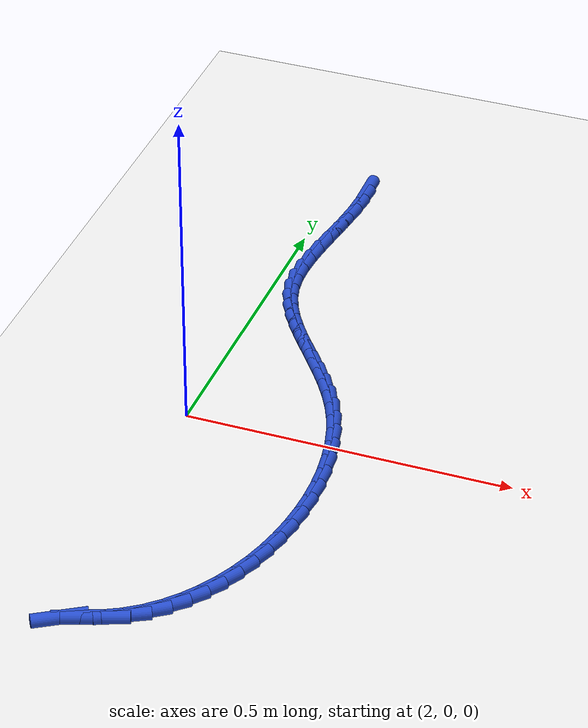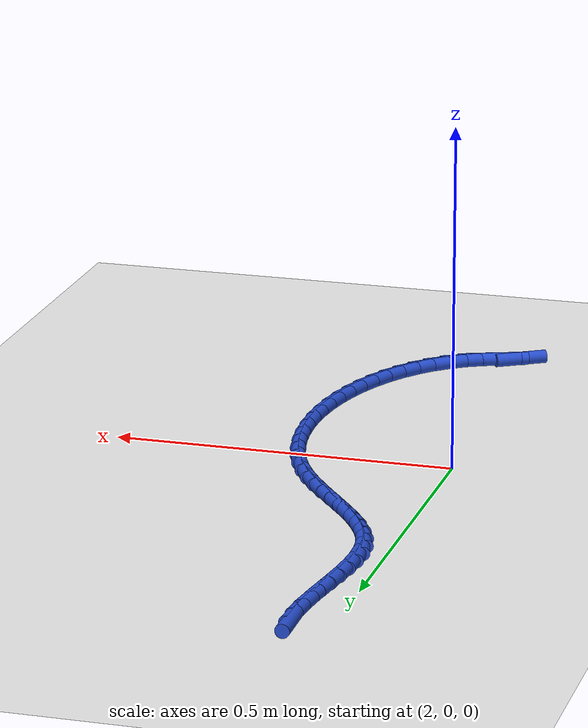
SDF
<sdf version="1.6">
 <world name="default">
  <model name="ground_plane">
   <static>1</static>
   <link name="link">
    <collision name="collision">
     <geometry><plane><normal>0 0 1</normal><size>100 100</size></plane></geometry>
     <surface><friction><ode><mu>100</mu><mu2>50</mu2></ode></friction></surface>
    </collision>
    <visual name="visual">
     <cast_shadows>0</cast_shadows>
     <geometry><plane><normal>0 0 1</normal><size>100 100</size></plane></geometry>
     <material>
      <script><uri>file://media/materials/scripts/gazebo.material</uri><name>Gazebo/WhiteGlow</name></script>
     </material>
    </visual>
   </link>
  </model>
  <model name="line">
   <link name="link_110">
    <pose>2.051928898273188 0.6429078915400556 0.01 0 1.57 -1.5515799942879418</pose>
    <collision name="collision">
     <geometry><cylinder><radius>0.01</radius><length>0.08</length></cylinder></geometry>
    </collision>
    <visual name="visual">
     <material>
      <script><name>Gazebo/Blue</name><uri>file://media/materials/scripts/gazebo.material</uri></script>
     </material>
     <geometry><cylinder><radius>0.01</radius><length>0.08</length></cylinder></geometry>
    </visual>
   </link>
   <link name="link_111">
    <pose>2.0524675312035914 0.6148813870699993 0.01 0 1.57 1.515322402773047</pose>
    <collision name="collision">
     <geometry><cylinder><radius>0.01</radius><length>0.08</length></cylinder></geometry>
    </collision>
    <visual name="visual">
     <material>
      <script><name>Gazebo/Blue</name><uri>file://media/materials/scripts/gazebo.material</uri></script>
     </material>
     <geometry><cylinder><radius>0.01</radius><length>0.08</length></cylinder></geometry>
    </visual>
   </link>
   <link name="link_112">
    <pose>2.0508560644982783 0.5858621068329057 0.01 0 1.57 1.46584285747895</pose>
    <collision name="collision">
     <geometry><cylinder><radius>0.01</radius><length>0.08</length></cylinder></geometry>
    </collision>
    <visual name="visual">
     <material>
      <script><name>Gazebo/Blue</name><uri>file://media/materials/scripts/gazebo.material</uri></script>
     </material>
     <geometry><cylinder><radius>0.01</radius><length>0.08</length></cylinder></geometry>
    </visual>
   </link>
   <link name="link_113">
    <pose>2.0477229886396873 0.5561197498524661 0.01 0 1.57 1.438241652247419</pose>
    <collision name="collision">
     <geometry><cylinder><radius>0.01</radius><length>0.08</length></cylinder></geometry>
    </collision>
    <visual name="visual">
     <material>
      <script><name>Gazebo/Blue</name><uri>file://media/materials/scripts/gazebo.material</uri></script>
     </material>
     <geometry><cylinder><radius>0.01</radius><length>0.08</length></cylinder></geometry>
    </visual>
   </link>
   <link name="link_114">
    <pose>2.0436967941102613 0.5259240151523714 0.01 0 1.57 1.4304833205203604</pose>
    <collision name="collision">
     <geometry><cylinder><radius>0.01</radius><length>0.08</length></cylinder></geometry>
    </collision>
    <visual name="visual">
     <material>
      <script><name>Gazebo/Blue</name><uri>file://media/materials/scripts/gazebo.material</uri></script>
     </material>
     <geometry><cylinder><radius>0.01</radius><length>0.08</length></cylinder></geometry>
    </visual>
   </link>
   <link name="link_115">
    <pose>2.0394059713924397 0.4955446017563124 0.01 0 1.57 1.4418842857277208</pose>
    <collision name="collision">
     <geometry><cylinder><radius>0.01</radius><length>0.08</length></cylinder></geometry>
    </collision>
    <visual name="visual">
     <material>
      <script><name>Gazebo/Blue</name><uri>file://media/materials/scripts/gazebo.material</uri></script>
     </material>
     <geometry><cylinder><radius>0.01</radius><length>0.08</length></cylinder></geometry>
    </visual>
   </link>
   <link name="link_116">
    <pose>2.0354790109686633 0.4652512086879811 0.01 0 1.57 1.4730845856104966</pose>
    <collision name="collision">
     <geometry><cylinder><radius>0.01</radius><length>0.08</length></cylinder></geometry>
    </collision>
    <visual name="visual">
     <material>
      <script><name>Gazebo/Blue</name><uri>file://media/materials/scripts/gazebo.material</uri></script>
     </material>
     <geometry><cylinder><radius>0.01</radius><length>0.08</length></cylinder></geometry>
    </visual>
   </link>
   <link name="link_117">
    <pose>2.032544403321373 0.43531353497106823 0.01 0 1.57 1.5260066736077122</pose>
    <collision name="collision">
     <geometry><cylinder><radius>0.01</radius><length>0.08</length></cylinder></geometry>
    </collision>
    <visual name="visual">
     <material>
      <script><name>Gazebo/Blue</name><uri>file://media/materials/scripts/gazebo.material</uri></script>
     </material>
     <geometry><cylinder><radius>0.01</radius><length>0.08</length></cylinder></geometry>
    </visual>
   </link>
   <link name="link_118">
    <pose>2.031230638933009 0.40600127962926424 0.01 0 1.57 -1.5378854984170078</pose>
    <collision name="collision">
     <geometry><cylinder><radius>0.01</radius><length>0.08</length></cylinder></geometry>
    </collision>
    <visual name="visual">
     <material>
      <script><name>Gazebo/Blue</name><uri>file://media/materials/scripts/gazebo.material</uri></script>
     </material>
     <geometry><cylinder><radius>0.01</radius><length>0.08</length></cylinder></geometry>
    </visual>
   </link>
   <link name="link_119">
    <pose>2.0321662082860126 0.3775841416862616 0.01 0 1.57 -1.4317714088092721</pose>
    <collision name="collision">
     <geometry><cylinder><radius>0.01</radius><length>0.08</length></cylinder></geometry>
    </collision>
    <visual name="visual">
     <material>
      <script><name>Gazebo/Blue</name><uri>file://media/materials/scripts/gazebo.material</uri></script>
     </material>
     <geometry><cylinder><radius>0.01</radius><length>0.08</length></cylinder></geometry>
    </visual>
   </link>
   <link name="link_120">
    <pose>2.03597956247909 0.3503318012085993 0.01 0 1.57 -1.3035466312232742</pose>
    <collision name="collision">
     <geometry><cylinder><radius>0.01</radius><length>0.08</length></cylinder></geometry>
    </collision>
    <visual name="visual">
     <material>
      <script><name>Gazebo/Blue</name><uri>file://media/materials/scripts/gazebo.material</uri></script>
     </material>
     <geometry><cylinder><radius>0.01</radius><length>0.08</length></cylinder></geometry>
    </visual>
   </link>
   <link name="link_121">
    <pose>2.0430776681426175 0.32440732788857907 0.01 0 1.57 -1.1857007986821981</pose>
    <collision name="collision">
     <geometry><cylinder><radius>0.01</radius><length>0.08</length></cylinder></geometry>
    </collision>
    <visual name="visual">
     <material>
      <script><name>Gazebo/Blue</name><uri>file://media/materials/scripts/gazebo.material</uri></script>
     </material>
     <geometry><cylinder><radius>0.01</radius><length>0.08</length></cylinder></geometry>
    </visual>
   </link>
   <link name="link_122">
    <pose>2.0531260514534546 0.2996169029882652 0.01 0 1.57 -1.0890316122896848</pose>
    <collision name="collision">
     <geometry><cylinder><radius>0.01</radius><length>0.08</length></cylinder></geometry>
    </collision>
    <visual name="visual">
     <material>
      <script><name>Gazebo/Blue</name><uri>file://media/materials/scripts/gazebo.material</uri></script>
     </material>
     <geometry><cylinder><radius>0.01</radius><length>0.08</length></cylinder></geometry>
    </visual>
   </link>
   <link name="link_123">
    <pose>2.0656352690970006 0.275692114026853 0.01 0 1.57 -1.0152583380880218</pose>
    <collision name="collision">
     <geometry><cylinder><radius>0.01</radius><length>0.08</length></cylinder></geometry>
    </collision>
    <visual name="visual">
     <material>
      <script><name>Gazebo/Blue</name><uri>file://media/materials/scripts/gazebo.material</uri></script>
     </material>
     <geometry><cylinder><radius>0.01</radius><length>0.08</length></cylinder></geometry>
    </visual>
   </link>
   <link name="link_124">
    <pose>2.0801158777586544 0.25236454852353873 0.01 0 1.57 -0.9640668771519387</pose>
    <collision name="collision">
     <geometry><cylinder><radius>0.01</radius><length>0.08</length></cylinder></geometry>
    </collision>
    <visual name="visual">
     <material>
      <script><name>Gazebo/Blue</name><uri>file://media/materials/scripts/gazebo.material</uri></script>
     </material>
     <geometry><cylinder><radius>0.01</radius><length>0.08</length></cylinder></geometry>
    </visual>
   </link>
   <link name="link_125">
    <pose>2.0960784341238146 0.22936579399751778 0.01 0 1.57 -0.934270527627311</pose>
    <collision name="collision">
     <geometry><cylinder><radius>0.01</radius><length>0.08</length></cylinder></geometry>
    </collision>
    <visual name="visual">
     <material>
      <script><name>Gazebo/Blue</name><uri>file://media/materials/scripts/gazebo.material</uri></script>
     </material>
     <geometry><cylinder><radius>0.01</radius><length>0.08</length></cylinder></geometry>
    </visual>
   </link>
   <link name="link_126">
    <pose>2.113033494877882 0.2064274379679856 0.01 0 1.57 -0.9245815264626674</pose>
    <collision name="collision">
     <geometry><cylinder><radius>0.01</radius><length>0.08</length></cylinder></geometry>
    </collision>
    <visual name="visual">
     <material>
      <script><name>Gazebo/Blue</name><uri>file://media/materials/scripts/gazebo.material</uri></script>
     </material>
     <geometry><cylinder><radius>0.01</radius><length>0.08</length></cylinder></geometry>
    </visual>
   </link>
   <link name="link_127">
    <pose>2.1304916167062564 0.18328106795413848 0.01 0 1.57 -0.9339757741442324</pose>
    <collision name="collision">
     <geometry><cylinder><radius>0.01</radius><length>0.08</length></cylinder></geometry>
    </collision>
    <visual name="visual">
     <material>
      <script><name>Gazebo/Blue</name><uri>file://media/materials/scripts/gazebo.material</uri></script>
     </material>
     <geometry><cylinder><radius>0.01</radius><length>0.08</length></cylinder></geometry>
    </visual>
   </link>
   <link name="link_128">
    <pose>2.1479633562943348 0.1596582714751717 0.01 0 1.57 -0.9617643121148131</pose>
    <collision name="collision">
     <geometry><cylinder><radius>0.01</radius><length>0.08</length></cylinder></geometry>
    </collision>
    <visual name="visual">
     <material>
      <script><name>Gazebo/Blue</name><uri>file://media/materials/scripts/gazebo.material</uri></script>
     </material>
     <geometry><cylinder><radius>0.01</radius><length>0.08</length></cylinder></geometry>
    </visual>
   </link>
   <link name="link_129">
    <pose>2.1649592703275173 0.13529063605028108 0.01 0 1.57 -1.0074628464894861</pose>
    <collision name="collision">
     <geometry><cylinder><radius>0.01</radius><length>0.08</length></cylinder></geometry>
    </collision>
    <visual name="visual">
     <material>
      <script><name>Gazebo/Blue</name><uri>file://media/materials/scripts/gazebo.material</uri></script>
     </material>
     <geometry><cylinder><radius>0.01</radius><length>0.08</length></cylinder></geometry>
    </visual>
   </link>
   <link name="link_130">
    <pose>2.180989915491204 0.10990974919866221 0.01 0 1.57 -1.0705041970759233</pose>
    <collision name="collision">
     <geometry><cylinder><radius>0.01</radius><length>0.08</length></cylinder></geometry>
    </collision>
    <visual name="visual">
     <material>
      <script><name>Gazebo/Blue</name><uri>file://media/materials/scripts/gazebo.material</uri></script>
     </material>
     <geometry><cylinder><radius>0.01</radius><length>0.08</length></cylinder></geometry>
    </visual>
   </link>
   <link name="link_131">
    <pose>2.195565848470794 0.08324719843951087 0.01 0 1.57 -1.1485788876861844</pose>
    <collision name="collision">
     <geometry><cylinder><radius>0.01</radius><length>0.08</length></cylinder></geometry>
    </collision>
    <visual name="visual">
     <material>
      <script><name>Gazebo/Blue</name><uri>file://media/materials/scripts/gazebo.material</uri></script>
     </material>
     <geometry><cylinder><radius>0.01</radius><length>0.08</length></cylinder></geometry>
    </visual>
   </link>
   <link name="link_132">
    <pose>2.2082265251599895 0.05506444085726743 0.01 0 1.57 -1.2278576072758378</pose>
    <collision name="collision">
     <geometry><cylinder><radius>0.01</radius><length>0.08</length></cylinder></geometry>
    </collision>
    <visual name="visual">
     <material>
      <script><name>Gazebo/Blue</name><uri>file://media/materials/scripts/gazebo.material</uri></script>
     </material>
     <geometry><cylinder><radius>0.01</radius><length>0.08</length></cylinder></geometry>
    </visual>
   </link>
   <link name="link_133">
    <pose>2.218807699233438 0.02542918019222179 0.01 0 1.57 -1.3015198901947602</pose>
    <collision name="collision">
     <geometry><cylinder><radius>0.01</radius><length>0.08</length></cylinder></geometry>
    </collision>
    <visual name="visual">
     <material>
      <script><name>Gazebo/Blue</name><uri>file://media/materials/scripts/gazebo.material</uri></script>
     </material>
     <geometry><cylinder><radius>0.01</radius><length>0.08</length></cylinder></geometry>
    </visual>
   </link>
   <link name="link_134">
    <pose>2.227318997335612 -0.005411168663320669 0.01 0 1.57 -1.3705563075115206</pose>
    <collision name="collision">
     <geometry><cylinder><radius>0.01</radius><length>0.08</length></cylinder></geometry>
    </collision>
    <visual name="visual">
     <material>
      <script><name>Gazebo/Blue</name><uri>file://media/materials/scripts/gazebo.material</uri></script>
     </material>
     <geometry><cylinder><radius>0.01</radius><length>0.08</length></cylinder></geometry>
    </visual>
   </link>
   <link name="link_135">
    <pose>2.233772257733157 -0.03720690493461526 0.01 0 1.57 -1.4360223727104497</pose>
    <collision name="collision">
     <geometry><cylinder><radius>0.01</radius><length>0.08</length></cylinder></geometry>
    </collision>
    <visual name="visual">
     <material>
      <script><name>Gazebo/Blue</name><uri>file://media/materials/scripts/gazebo.material</uri></script>
     </material>
     <geometry><cylinder><radius>0.01</radius><length>0.08</length></cylinder></geometry>
    </visual>
   </link>
   <link name="link_136">
    <pose>2.2381793186927226 -0.06970832784691641 0.01 0 1.57 -1.4989274099464993</pose>
    <collision name="collision">
     <geometry><cylinder><radius>0.01</radius><length>0.08</length></cylinder></geometry>
    </collision>
    <visual name="visual">
     <material>
      <script><name>Gazebo/Blue</name><uri>file://media/materials/scripts/gazebo.material</uri></script>
     </material>
     <geometry><cylinder><radius>0.01</radius><length>0.08</length></cylinder></geometry>
    </visual>
   </link>
   <link name="link_137">
    <pose>2.2405520184809555 -0.10266573662547859 0.01 0 1.57 -1.560237675769672</pose>
    <collision name="collision">
     <geometry><cylinder><radius>0.01</radius><length>0.08</length></cylinder></geometry>
    </collision>
    <visual name="visual">
     <material>
      <script><name>Gazebo/Blue</name><uri>file://media/materials/scripts/gazebo.material</uri></script>
     </material>
     <geometry><cylinder><radius>0.01</radius><length>0.08</length></cylinder></geometry>
    </visual>
   </link>
   <link name="link_138">
    <pose>2.2409021953645034 -0.1358294304955563 0.01 0 1.57 1.52070258775959</pose>
    <collision name="collision">
     <geometry><cylinder><radius>0.01</radius><length>0.08</length></cylinder></geometry>
    </collision>
    <visual name="visual">
     <material>
      <script><name>Gazebo/Blue</name><uri>file://media/materials/scripts/gazebo.material</uri></script>
     </material>
     <geometry><cylinder><radius>0.01</radius><length>0.08</length></cylinder></geometry>
    </visual>
   </link>
   <link name="link_139">
    <pose>2.239241687610013 -0.16894970868240394 0.01 0 1.57 1.459781285372613</pose>
    <collision name="collision">
     <geometry><cylinder><radius>0.01</radius><length>0.08</length></cylinder></geometry>
    </collision>
    <visual name="visual">
     <material>
      <script><name>Gazebo/Blue</name><uri>file://media/materials/scripts/gazebo.material</uri></script>
     </material>
     <geometry><cylinder><radius>0.01</radius><length>0.08</length></cylinder></geometry>
    </visual>
   </link>
   <link name="link_140">
    <pose>2.2355823334841336 -0.20177687041127704 0.01 0 1.57 1.3976527885412355</pose>
    <collision name="collision">
     <geometry><cylinder><radius>0.01</radius><length>0.08</length></cylinder></geometry>
    </collision>
    <visual name="visual">
     <material>
      <script><name>Gazebo/Blue</name><uri>file://media/materials/scripts/gazebo.material</uri></script>
     </material>
     <geometry><cylinder><radius>0.01</radius><length>0.08</length></cylinder></geometry>
    </visual>
   </link>
   <link name="link_141">
    <pose>2.2299359712535094 -0.23406121490742798 0.01 0 1.57 1.3333458316637485</pose>
    <collision name="collision">
     <geometry><cylinder><radius>0.01</radius><length>0.08</length></cylinder></geometry>
    </collision>
    <visual name="visual">
     <material>
      <script><name>Gazebo/Blue</name><uri>file://media/materials/scripts/gazebo.material</uri></script>
     </material>
     <geometry><cylinder><radius>0.01</radius><length>0.08</length></cylinder></geometry>
    </visual>
   </link>
   <link name="link_142">
    <pose>2.222314439184792 -0.26555304139611247 0.01 0 1.57 1.2658375643757025</pose>
    <collision name="collision">
     <geometry><cylinder><radius>0.01</radius><length>0.08</length></cylinder></geometry>
    </collision>
    <visual name="visual">
     <material>
      <script><name>Gazebo/Blue</name><uri>file://media/materials/scripts/gazebo.material</uri></script>
     </material>
     <geometry><cylinder><radius>0.01</radius><length>0.08</length></cylinder></geometry>
    </visual>
   </link>
   <link name="link_143">
    <pose>2.2127295755446257 -0.2960026491025846 0.01 0 1.57 1.1940420772942522</pose>
    <collision name="collision">
     <geometry><cylinder><radius>0.01</radius><length>0.08</length></cylinder></geometry>
    </collision>
    <visual name="visual">
     <material>
      <script><name>Gazebo/Blue</name><uri>file://media/materials/scripts/gazebo.material</uri></script>
     </material>
     <geometry><cylinder><radius>0.01</radius><length>0.08</length></cylinder></geometry>
    </visual>
   </link>
   <link name="link_144">
    <pose>2.201193218599659 -0.32516033725209914 0.01 0 1.57 1.1168131200579923</pose>
    <collision name="collision">
     <geometry><cylinder><radius>0.01</radius><length>0.08</length></cylinder></geometry>
    </collision>
    <visual name="visual">
     <material>
      <script><name>Gazebo/Blue</name><uri>file://media/materials/scripts/gazebo.material</uri></script>
     </material>
     <geometry><cylinder><radius>0.01</radius><length>0.08</length></cylinder></geometry>
    </visual>
   </link>
   <link name="link_145">
    <pose>2.187717206616539 -0.35277640506991026 0.01 0 1.57 1.0329723993900366</pose>
    <collision name="collision">
     <geometry><cylinder><radius>0.01</radius><length>0.08</length></cylinder></geometry>
    </collision>
    <visual name="visual">
     <material>
      <script><name>Gazebo/Blue</name><uri>file://media/materials/scripts/gazebo.material</uri></script>
     </material>
     <geometry><cylinder><radius>0.01</radius><length>0.08</length></cylinder></geometry>
    </visual>
   </link>
   <link name="link_146">
    <pose>2.172313377861915 -0.37860115178127285 0.01 0 1.57 0.9413801155111661</pose>
    <collision name="collision">
     <geometry><cylinder><radius>0.01</radius><length>0.08</length></cylinder></geometry>
    </collision>
    <visual name="visual">
     <material>
      <script><name>Gazebo/Blue</name><uri>file://media/materials/scripts/gazebo.material</uri></script>
     </material>
     <geometry><cylinder><radius>0.01</radius><length>0.08</length></cylinder></geometry>
    </visual>
   </link>
   <link name="link_147">
    <pose>2.154993570602432 -0.402384876611441 0.01 0 1.57 0.8410681035401546</pose>
    <collision name="collision">
     <geometry><cylinder><radius>0.01</radius><length>0.08</length></cylinder></geometry>
    </collision>
    <visual name="visual">
     <material>
      <script><name>Gazebo/Blue</name><uri>file://media/materials/scripts/gazebo.material</uri></script>
     </material>
     <geometry><cylinder><radius>0.01</radius><length>0.08</length></cylinder></geometry>
    </visual>
   </link>
   <link name="link_148">
    <pose>2.1357696231047383 -0.42387787878566935 0.01 0 1.57 0.7314517043867289</pose>
    <collision name="collision">
     <geometry><cylinder><radius>0.01</radius><length>0.08</length></cylinder></geometry>
    </collision>
    <visual name="visual">
     <material>
      <script><name>Gazebo/Blue</name><uri>file://media/materials/scripts/gazebo.material</uri></script>
     </material>
     <geometry><cylinder><radius>0.01</radius><length>0.08</length></cylinder></geometry>
    </visual>
   </link>
   <link name="link_149">
    <pose>2.114653373635481 -0.44283045752921285 0.01 0 1.57 0.6126132982627707</pose>
    <collision name="collision">
     <geometry><cylinder><radius>0.01</radius><length>0.08</length></cylinder></geometry>
    </collision>
    <visual name="visual">
     <material>
      <script><name>Gazebo/Blue</name><uri>file://media/materials/scripts/gazebo.material</uri></script>
     </material>
     <geometry><cylinder><radius>0.01</radius><length>0.08</length></cylinder></geometry>
    </visual>
   </link>
   <link name="link_150">
    <pose>2.091656660461309 -0.45899291206732484 0.01 0 1.57 0.4855987031985873</pose>
    <collision name="collision">
     <geometry><cylinder><radius>0.01</radius><length>0.08</length></cylinder></geometry>
    </collision>
    <visual name="visual">
     <material>
      <script><name>Gazebo/Blue</name><uri>file://media/materials/scripts/gazebo.material</uri></script>
     </material>
     <geometry><cylinder><radius>0.01</radius><length>0.08</length></cylinder></geometry>
    </visual>
   </link>
   <link name="link_151">
    <pose>2.0667913218488683 -0.4721155416252603 0.01 0 1.57 0.3608742065344251</pose>
    <collision name="collision">
     <geometry><cylinder><radius>0.01</radius><length>0.08</length></cylinder></geometry>
    </collision>
    <visual name="visual">
     <material>
      <script><name>Gazebo/Blue</name><uri>file://media/materials/scripts/gazebo.material</uri></script>
     </material>
     <geometry><cylinder><radius>0.01</radius><length>0.08</length></cylinder></geometry>
    </visual>
   </link>
   <link name="link_152">
    <pose>2.040195545505194 -0.48215282069603077 0.01 0 1.57 0.3730879010487373</pose>
    <collision name="collision">
     <geometry><cylinder><radius>0.01</radius><length>0.08</length></cylinder></geometry>
    </collision>
    <visual name="visual">
     <material>
      <script><name>Gazebo/Blue</name><uri>file://media/materials/scripts/gazebo.material</uri></script>
     </material>
     <geometry><cylinder><radius>0.01</radius><length>0.08</length></cylinder></geometry>
    </visual>
   </link>
   <link name="link_153">
    <pose>2.0140631321214095 -0.4923815665705689 0.01 0 1.57 0.5574745956991313</pose>
    <collision name="collision">
     <geometry><cylinder><radius>0.01</radius><length>0.08</length></cylinder></geometry>
    </collision>
    <visual name="visual">
     <material>
      <script><name>Gazebo/Blue</name><uri>file://media/materials/scripts/gazebo.material</uri></script>
     </material>
     <geometry><cylinder><radius>0.01</radius><length>0.08</length></cylinder></geometry>
    </visual>
   </link>
  </model>
 </world>
</sdf>
